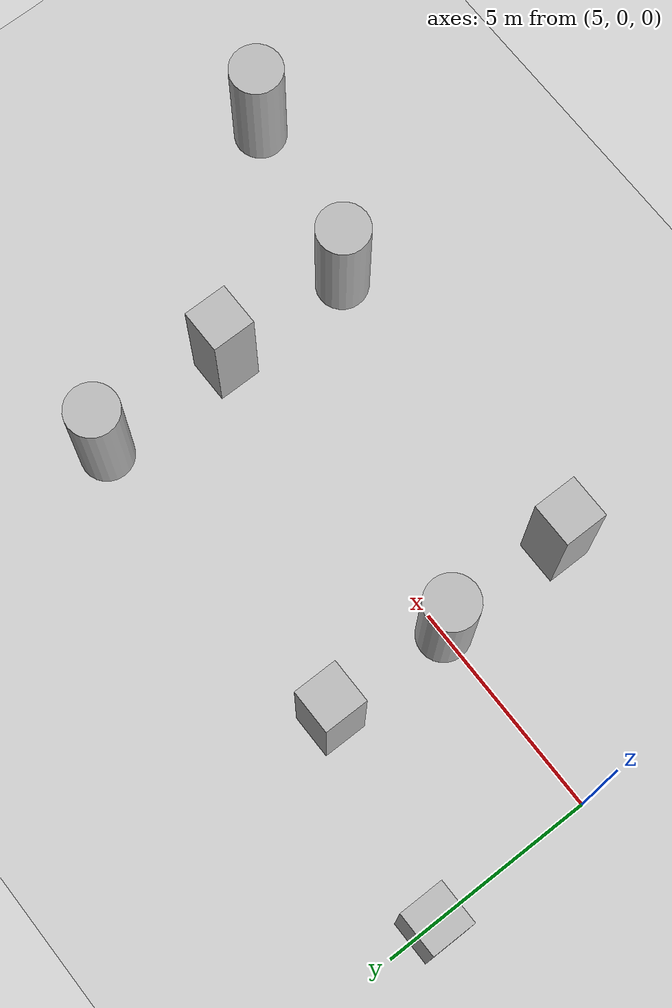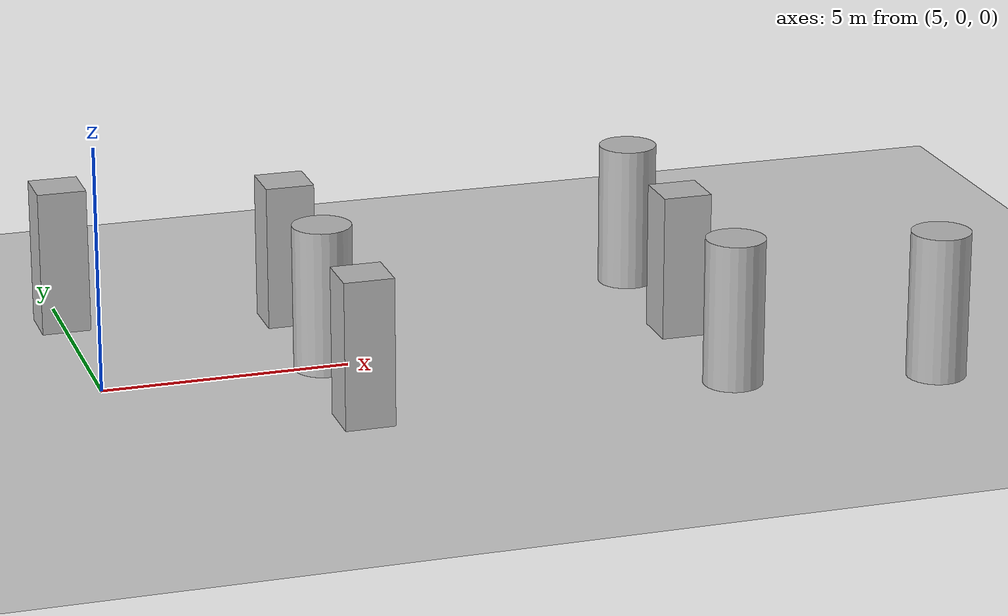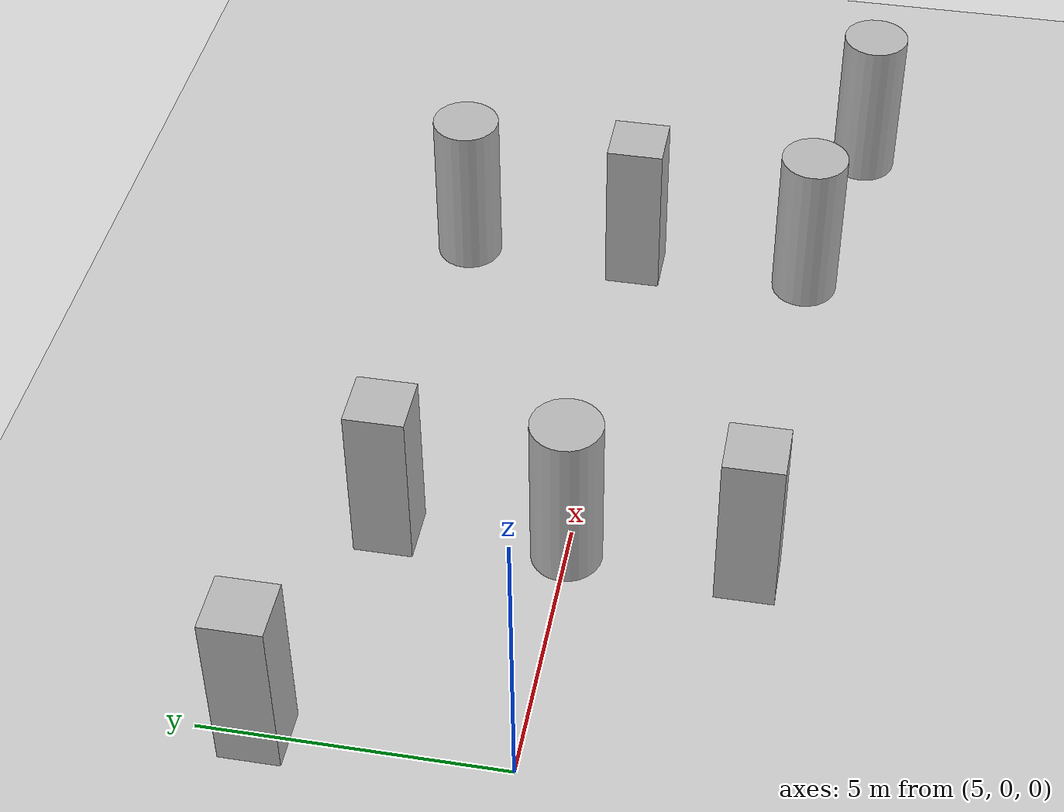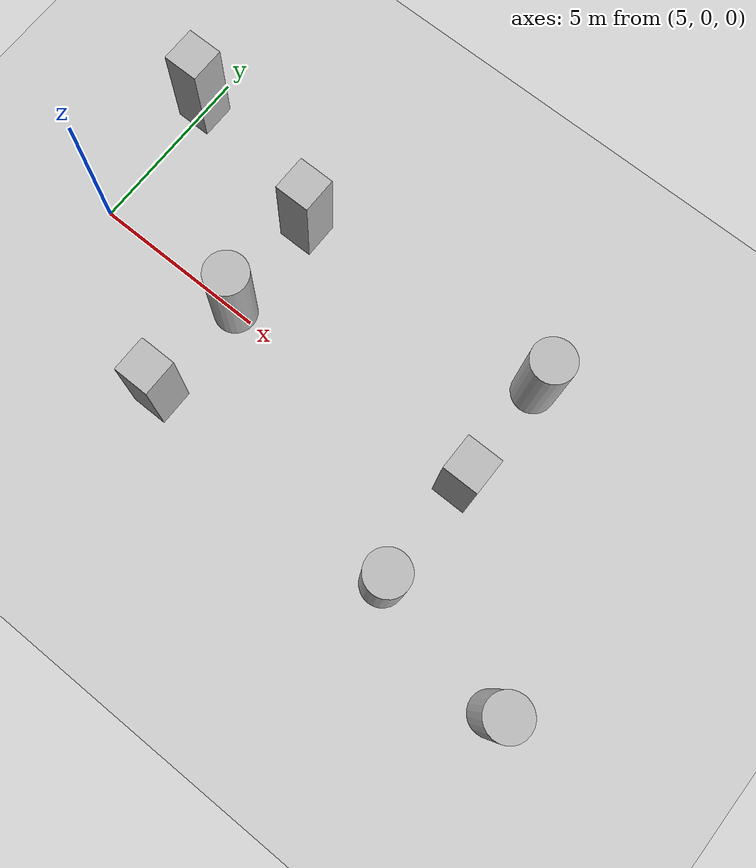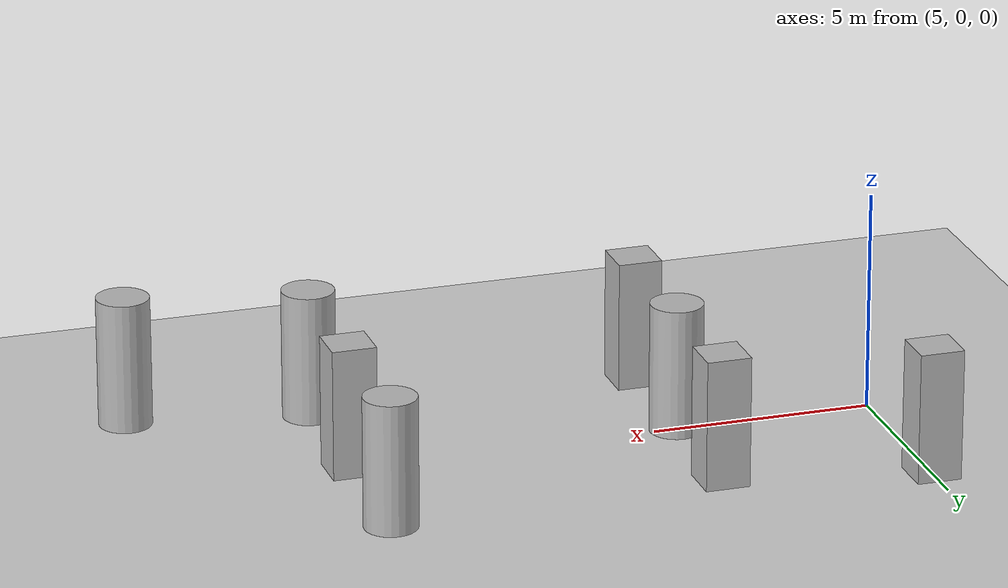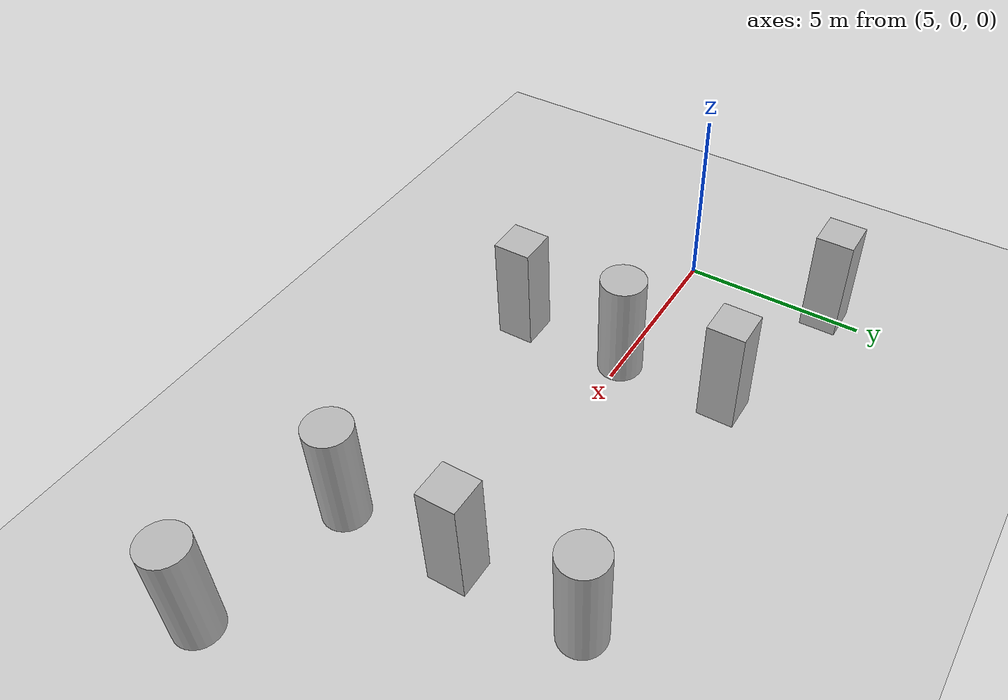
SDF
<sdf version="1.6">
 <world name="main_world">
  <include><uri>model://sun</uri></include>
  <include><uri>model://ground_plane</uri></include>
  <physics name="default_physics" default="0" type="ode">
   <gravity>0 0 -9.8066</gravity>
   <ode>
    <solver><type>quick</type><iters>10</iters><sor>1.3</sor></solver>
    <constraints>
     <cfm>0</cfm>
     <erp>0.2</erp>
     <contact_max_correcting_vel>100</contact_max_correcting_vel>
     <contact_surface_layer>0.001</contact_surface_layer>
    </constraints>
   </ode>
   <max_step_size>0.004</max_step_size>
   <real_time_factor>1</real_time_factor>
   <real_time_update_rate>250</real_time_update_rate>
  </physics>
  <model name="obstacle_avoidance_1">
   <static>true</static>
   <pose>9.5 0.0 1.5 0 0 0</pose>
   <link name="link">
    <collision name="collision">
     <geometry><cylinder><radius>0.6</radius><length>3.0</length></cylinder></geometry>
    </collision>
    <visual name="visual">
     <geometry><cylinder><radius>0.6</radius><length>3.0</length></cylinder></geometry>
    </visual>
   </link>
  </model>
  <model name="obstacle_avoidance_2">
   <static>true</static>
   <pose>9.5 3.0 1.5 0 0 0</pose>
   <link name="link">
    <collision name="collision"><geometry><box><size>1.0 1.0 3.0</size></box></geometry></collision>
    <visual name="visual"><geometry><box><size>1.0 1.0 3.0</size></box></geometry></visual>
   </link>
  </model>
  <model name="obstacle_avoidance_3">
   <static>true</static>
   <pose>9.5 -3.0 1.5 0 0 0</pose>
   <link name="link">
    <collision name="collision"><geometry><box><size>1.0 1.0 3.0</size></box></geometry></collision>
    <visual name="visual"><geometry><box><size>1.0 1.0 3.0</size></box></geometry></visual>
   </link>
  </model>
  <model name="obstacle_avoidance_4">
   <static>true</static>
   <pose>17.0 0.0 1.5 0 0 0</pose>
   <link name="link">
    <collision name="collision"><geometry><box><size>1.0 1.0 3.0</size></box></geometry></collision>
    <visual name="visual"><geometry><box><size>1.0 1.0 3.0</size></box></geometry></visual>
   </link>
  </model>
  <model name="obstacle_avoidance_5">
   <static>true</static>
   <pose>17.0 3.2 1.5 0 0 0</pose>
   <link name="link">
    <collision name="collision">
     <geometry><cylinder><radius>0.6</radius><length>3.0</length></cylinder></geometry>
    </collision>
    <visual name="visual">
     <geometry><cylinder><radius>0.6</radius><length>3.0</length></cylinder></geometry>
    </visual>
   </link>
  </model>
  <model name="obstacle_avoidance_6">
   <static>true</static>
   <pose>17.0 -3.2 1.5 0 0 0</pose>
   <link name="link">
    <collision name="collision">
     <geometry><cylinder><radius>0.6</radius><length>3.0</length></cylinder></geometry>
    </collision>
    <visual name="visual">
     <geometry><cylinder><radius>0.6</radius><length>3.0</length></cylinder></geometry>
    </visual>
   </link>
  </model>
  <model name="obstacle_avoidance_7">
   <static>true</static>
   <pose>5.0 4.0 1.5 0 0 0</pose>
   <link name="link">
    <collision name="collision"><geometry><box><size>1.0 1.0 3.0</size></box></geometry></collision>
    <visual name="visual"><geometry><box><size>1.0 1.0 3.0</size></box></geometry></visual>
   </link>
  </model>
  <model name="obstacle_avoidance_8">
   <static>true</static>
   <pose>21.0 -4.0 1.5 0 0 0</pose>
   <link name="link">
    <collision name="collision">
     <geometry><cylinder><radius>0.6</radius><length>3.0</length></cylinder></geometry>
    </collision>
    <visual name="visual">
     <geometry><cylinder><radius>0.6</radius><length>3.0</length></cylinder></geometry>
    </visual>
   </link>
  </model>
 </world>
</sdf>
